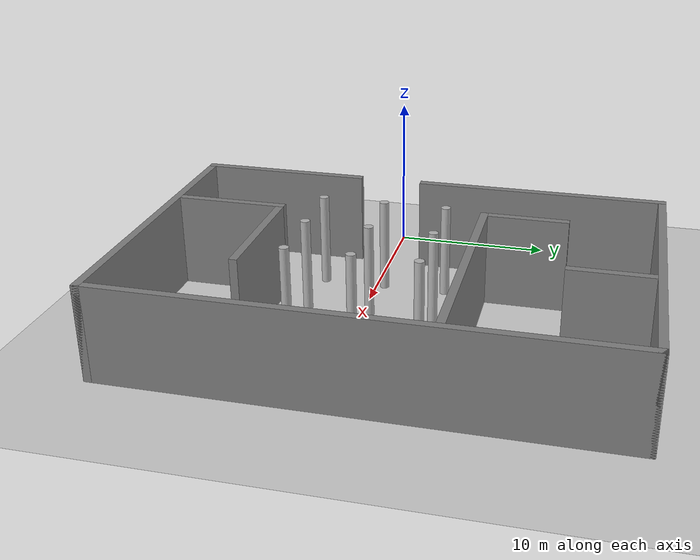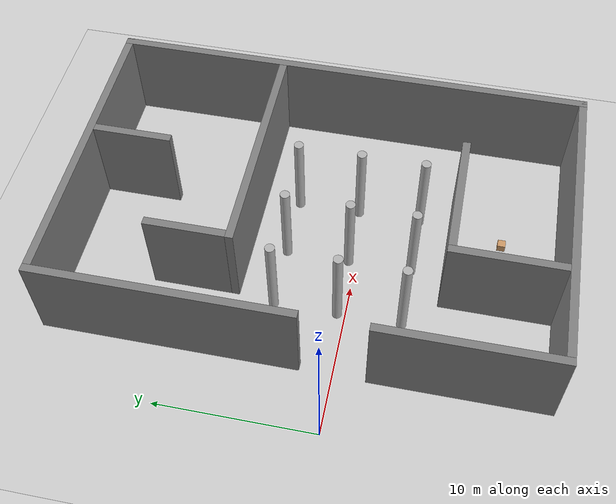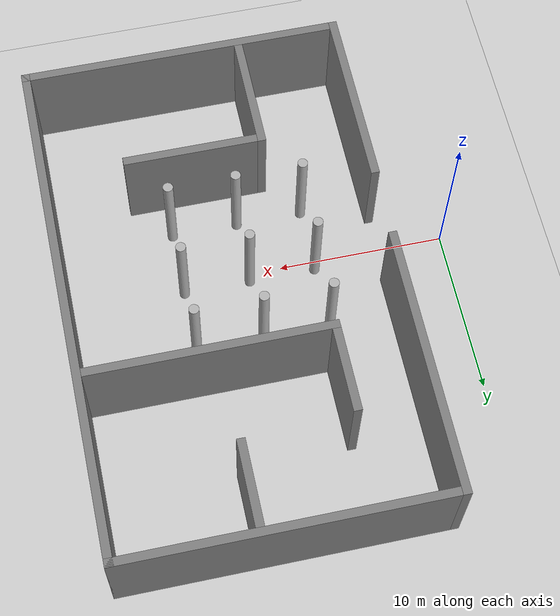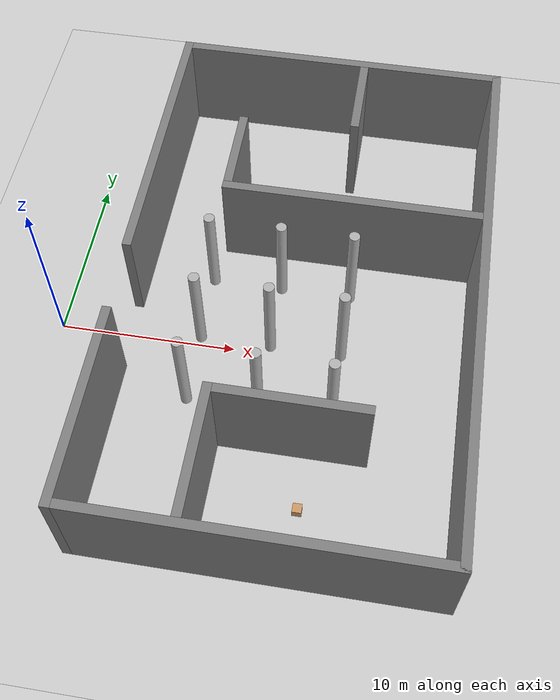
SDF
<?xml version="1.0" encoding="UTF-8"?>
<sdf version="1.9">
  <world name="default">
    <physics type="ode">
      <max_step_size>0.004</max_step_size>
      <real_time_factor>1.0</real_time_factor>
      <real_time_update_rate>250</real_time_update_rate>
    </physics>
    <gravity>0 0 -9.8</gravity>
    <magnetic_field>6e-06 2.3e-05 -4.2e-05</magnetic_field>
    <atmosphere type="adiabatic"/>
    <scene>
      <grid>false</grid>
      <ambient>0.4 0.4 0.4 1</ambient>
      <background>0.7 0.7 0.7 1</background>
      <shadows>true</shadows>
    </scene>

    <model name="ground_plane">
      <pose>0 0 0 0 0 0</pose>
      <static>true</static>
      <link name="link">
        <collision name="collision">
          <geometry>
            <plane>
              <normal>0 0 1</normal>
              <size>100 100</size>
            </plane>
          </geometry>
          <surface>
            <friction>
              <ode/>
            </friction>
            <bounce/>
            <contact/>
          </surface>
        </collision>
        <visual name="visual">
          <geometry>
            <plane>
              <normal>0 0 1</normal>
              <size>100 100</size>
            </plane>
          </geometry>
          <material>
            <ambient>0.8 0.8 0.8 1</ambient>
            <diffuse>0.8 0.8 0.8 1</diffuse>
            <specular>0.8 0.8 0.8 1</specular>
          </material>
        </visual>
        <enable_wind>false</enable_wind>
      </link>
      <self_collide>false</self_collide>
    </model>

    <model name="box_to_move">
    <pose>15 -9 0.25 0 0 0</pose>
    <static>true</static>
    <link name="link">
      <visual name="visual">
        <geometry>
          <box>
            <size>0.5 0.5 0.5</size>
          </box>
        </geometry>
        <material>
          <ambient>0.8 0.6 0.4 1</ambient>
          <diffuse>0.8 0.6 0.4 1</diffuse>
          <specular>0.2 0.15 0.1 1</specular>
          <emissive>0 0 0 1</emissive>
        </material>
      </visual>
    </link>
    <plugin name="Attach_plugin_namespace::Attach_plugin" filename="Attach_plugin"/>
    </model>

    <model name="wall_1">
    <pose>4 10 3 0 0 0</pose>
    <static>true</static>
    <link name="link">
      <collision name="collision">
        <geometry>
          <box>
            <size>0.5 16 6</size>
          </box>
        </geometry>
      </collision>
      <visual name="visual">
        <geometry>
          <box>
            <size>0.5 16 6</size>
          </box>
        </geometry>
        <material>
          <ambient>0.5 0.5 0.5 1</ambient>
          <diffuse>0.5 0.5 0.5 1</diffuse>
          <specular>0.1 0.1 0.1 1</specular>
          <emissive>0 0 0 1</emissive>
        </material>
      </visual>
    </link>
    </model>

    <model name="wall_2">
    <pose>4 -7.5 3 0 0 0</pose>
    <static>true</static>
    <link name="link">
      <collision name="collision">
        <geometry>
          <box>
            <size>0.5 11 6</size>
          </box>
        </geometry>
      </collision>
      <visual name="visual">
        <geometry>
          <box>
            <size>0.5 11 6</size>
          </box>
        </geometry>
        <material>
          <ambient>0.5 0.5 0.5 1</ambient>
          <diffuse>0.5 0.5 0.5 1</diffuse>
          <specular>0.1 0.1 0.1 1</specular>
          <emissive>0 0 0 1</emissive>
        </material>
      </visual>
    </link>
    </model>

    <model name="wall_4">
    <pose>13.75 -12.75 3 0 0 0</pose>
    <static>true</static>
    <link name="link">
      <collision name="collision">
        <geometry>
          <box>
            <size>19 0.5 6</size>
          </box>
        </geometry>
      </collision>
      <visual name="visual">
        <geometry>
          <box>
            <size>19 0.5 6</size>
          </box>
        </geometry>
        <material>
          <ambient>0.5 0.5 0.5 1</ambient>
          <diffuse>0.5 0.5 0.5 1</diffuse>
          <specular>0.1 0.1 0.1 1</specular>
          <emissive>0 0 0 1</emissive>
        </material>
      </visual>
    </link>
    </model>

    <model name="wall_5">
    <pose>13.75 17.75 3 0 0 0</pose>
    <static>true</static>
    <link name="link">
      <collision name="collision">
        <geometry>
          <box>
            <size>19 0.5 6</size>
          </box>
        </geometry>
      </collision>
      <visual name="visual">
        <geometry>
          <box>
            <size>19 0.5 6</size>
          </box>
        </geometry>
        <material>
          <ambient>0.5 0.5 0.5 1</ambient>
          <diffuse>0.5 0.5 0.5 1</diffuse>
          <specular>0.1 0.1 0.1 1</specular>
          <emissive>0 0 0 1</emissive>
        </material>
      </visual>
    </link>
    </model>

    <model name="wall_6">
    <pose>23 2.5 3 0 0 0</pose>
    <static>true</static>
    <link name="link">
      <collision name="collision">
        <geometry>
          <box>
            <size>0.5 31 6</size>
          </box>
        </geometry>
      </collision>
      <visual name="visual">
        <geometry>
          <box>
            <size>0.5 31 6</size>
          </box>
        </geometry>
        <material>
          <ambient>0.5 0.5 0.5 1</ambient>
          <diffuse>0.5 0.5 0.5 1</diffuse>
          <specular>0.1 0.1 0.1 1</specular>
          <emissive>0 0 0 1</emissive>
        </material>
      </visual>
    </link>
    </model>

    <model name="wall_7">
    <pose>10 -9 3 0 0 0</pose>
    <static>true</static>
    <link name="link">
      <collision name="collision">
        <geometry>
          <box>
            <size>0.5 7 6</size>
          </box>
        </geometry>
      </collision>
      <visual name="visual">
        <geometry>
          <box>
            <size>0.5 7 6</size>
          </box>
        </geometry>
        <material>
          <ambient>0.5 0.5 0.5 1</ambient>
          <diffuse>0.5 0.5 0.5 1</diffuse>
          <specular>0.1 0.1 0.1 1</specular>
          <emissive>0 0 0 1</emissive>
        </material>
      </visual>
    </link>
    </model>

    <model name="wall_8">
    <pose>14.25 -5.75 3 0 0 0</pose>
    <static>true</static>
    <link name="link">
      <collision name="collision">
        <geometry>
          <box>
            <size>8 0.5 6</size>
          </box>
        </geometry>
      </collision>
      <visual name="visual">
        <geometry>
          <box>
            <size>8 0.5 6</size>
          </box>
        </geometry>
        <material>
          <ambient>0.5 0.5 0.5 1</ambient>
          <diffuse>0.5 0.5 0.5 1</diffuse>
          <specular>0.1 0.1 0.1 1</specular>
          <emissive>0 0 0 1</emissive>
        </material>
      </visual>
    </link>
    </model>

    <model name="wall_11">
    <pose>15.5 7 3 0 0 0</pose>
    <static>true</static>
    <link name="link">
      <collision name="collision">
        <geometry>
          <box>
            <size>14.5 0.5 6</size>
          </box>
        </geometry>
      </collision>
      <visual name="visual">
        <geometry>
          <box>
            <size>14.5 0.5 6</size>
          </box>
        </geometry>
        <material>
          <ambient>0.5 0.5 0.5 1</ambient>
          <diffuse>0.5 0.5 0.5 1</diffuse>
          <specular>0.1 0.1 0.1 1</specular>
          <emissive>0 0 0 1</emissive>
        </material>
      </visual>
    </link>
    </model>

    <model name="wall_13">
    <pose>8.5 9.75 3 0 0 0</pose>
    <static>true</static>
    <link name="link">
      <collision name="collision">
        <geometry>
          <box>
            <size>0.5 5 6</size>
          </box>
        </geometry>
      </collision>
      <visual name="visual">
        <geometry>
          <box>
            <size>0.5 5 6</size>
          </box>
        </geometry>
        <material>
          <ambient>0.5 0.5 0.5 1</ambient>
          <diffuse>0.5 0.5 0.5 1</diffuse>
          <specular>0.1 0.1 0.1 1</specular>
          <emissive>0 0 0 1</emissive>
        </material>
      </visual>
    </link>
    </model>

    <model name="wall_14">
    <pose>15 15 3 0 0 0</pose>
    <static>true</static>
    <link name="link">
      <collision name="collision">
        <geometry>
          <box>
            <size>0.5 5 6</size>
          </box>
        </geometry>
      </collision>
      <visual name="visual">
        <geometry>
          <box>
            <size>0.5 5 6</size>
          </box>
        </geometry>
        <material>
          <ambient>0.5 0.5 0.5 1</ambient>
          <diffuse>0.5 0.5 0.5 1</diffuse>
          <specular>0.1 0.1 0.1 1</specular>
          <emissive>0 0 0 1</emissive>
        </material>
      </visual>
    </link>
    </model>

    <model name="column_1">
    <pose>8 4.5 3 0 0 0</pose>
    <static>true</static>
    <link name="link">
      <collision name="collision">
        <geometry>
          <cylinder>
            <radius>0.3</radius>
            <length>6</length>
          </cylinder>
        </geometry>
      </collision>
      <visual name="visual">
        <geometry>
          <cylinder>
            <radius>0.3</radius>
            <length>6</length>
          </cylinder>
        </geometry>
        <material>
          <ambient>0.6 0.6 0.6 1</ambient>
          <diffuse>0.7 0.7 0.7 1</diffuse>
          <specular>0.3 0.3 0.3 1</specular>
          <emissive>0 0 0 1</emissive>
        </material>
      </visual>
    </link>
    </model>

    <model name="column_2">
    <pose>8 0.5 3 0 0 0</pose>
    <static>true</static>
    <link name="link">
      <collision name="collision">
        <geometry>
          <cylinder>
            <radius>0.3</radius>
            <length>6</length>
          </cylinder>
        </geometry>
      </collision>
      <visual name="visual">
        <geometry>
          <cylinder>
            <radius>0.3</radius>
            <length>6</length>
          </cylinder>
        </geometry>
        <material>
          <ambient>0.6 0.6 0.6 1</ambient>
          <diffuse>0.7 0.7 0.7 1</diffuse>
          <specular>0.3 0.3 0.3 1</specular>
          <emissive>0 0 0 1</emissive>
        </material>
      </visual>
    </link>
    </model>

    <model name="column_3">
    <pose>8 -3.5 3 0 0 0</pose>
    <static>true</static>
    <link name="link">
      <collision name="collision">
        <geometry>
          <cylinder>
            <radius>0.3</radius>
            <length>6</length>
          </cylinder>
        </geometry>
      </collision>
      <visual name="visual">
        <geometry>
          <cylinder>
            <radius>0.3</radius>
            <length>6</length>
          </cylinder>
        </geometry>
        <material>
          <ambient>0.6 0.6 0.6 1</ambient>
          <diffuse>0.7 0.7 0.7 1</diffuse>
          <specular>0.3 0.3 0.3 1</specular>
          <emissive>0 0 0 1</emissive>
        </material>
      </visual>
    </link>
    </model>

    <model name="column_4">
    <pose>12 4.5 3 0 0 0</pose>
    <static>true</static>
    <link name="link">
      <collision name="collision">
        <geometry>
          <cylinder>
            <radius>0.3</radius>
            <length>6</length>
          </cylinder>
        </geometry>
      </collision>
      <visual name="visual">
        <geometry>
          <cylinder>
            <radius>0.3</radius>
            <length>6</length>
          </cylinder>
        </geometry>
        <material>
          <ambient>0.6 0.6 0.6 1</ambient>
          <diffuse>0.7 0.7 0.7 1</diffuse>
          <specular>0.3 0.3 0.3 1</specular>
          <emissive>0 0 0 1</emissive>
        </material>
      </visual>
    </link>
    </model>

    <model name="column_5">
    <pose>12 0.5 3 0 0 0</pose>
    <static>true</static>
    <link name="link">
      <collision name="collision">
        <geometry>
          <cylinder>
            <radius>0.3</radius>
            <length>6</length>
          </cylinder>
        </geometry>
      </collision>
      <visual name="visual">
        <geometry>
          <cylinder>
            <radius>0.3</radius>
            <length>6</length>
          </cylinder>
        </geometry>
        <material>
          <ambient>0.6 0.6 0.6 1</ambient>
          <diffuse>0.7 0.7 0.7 1</diffuse>
          <specular>0.3 0.3 0.3 1</specular>
          <emissive>0 0 0 1</emissive>
        </material>
      </visual>
    </link>
    </model>

    <model name="column_6">
    <pose>12 -3.5 3 0 0 0</pose>
    <static>true</static>
    <link name="link">
      <collision name="collision">
        <geometry>
          <cylinder>
            <radius>0.3</radius>
            <length>6</length>
          </cylinder>
        </geometry>
      </collision>
      <visual name="visual">
        <geometry>
          <cylinder>
            <radius>0.3</radius>
            <length>6</length>
          </cylinder>
        </geometry>
        <material>
          <ambient>0.6 0.6 0.6 1</ambient>
          <diffuse>0.7 0.7 0.7 1</diffuse>
          <specular>0.3 0.3 0.3 1</specular>
          <emissive>0 0 0 1</emissive>
        </material>
      </visual>
    </link>
    </model>

    <model name="column_7">
    <pose>16 4.5 3 0 0 0</pose>
    <static>true</static>
    <link name="link">
      <collision name="collision">
        <geometry>
          <cylinder>
            <radius>0.3</radius>
            <length>6</length>
          </cylinder>
        </geometry>
      </collision>
      <visual name="visual">
        <geometry>
          <cylinder>
            <radius>0.3</radius>
            <length>6</length>
          </cylinder>
        </geometry>
        <material>
          <ambient>0.6 0.6 0.6 1</ambient>
          <diffuse>0.7 0.7 0.7 1</diffuse>
          <specular>0.3 0.3 0.3 1</specular>
          <emissive>0 0 0 1</emissive>
        </material>
      </visual>
    </link>
    </model>

    <model name="column_8">
    <pose>16 0.5 3 0 0 0</pose>
    <static>true</static>
    <link name="link">
      <collision name="collision">
        <geometry>
          <cylinder>
            <radius>0.3</radius>
            <length>6</length>
          </cylinder>
        </geometry>
      </collision>
      <visual name="visual">
        <geometry>
          <cylinder>
            <radius>0.3</radius>
            <length>6</length>
          </cylinder>
        </geometry>
        <material>
          <ambient>0.6 0.6 0.6 1</ambient>
          <diffuse>0.7 0.7 0.7 1</diffuse>
          <specular>0.3 0.3 0.3 1</specular>
          <emissive>0 0 0 1</emissive>
        </material>
      </visual>
    </link>
    </model>

    <model name="column_9">
    <pose>16 -3.5 3 0 0 0</pose>
    <static>true</static>
    <link name="link">
      <collision name="collision">
        <geometry>
          <cylinder>
            <radius>0.3</radius>
            <length>6</length>
          </cylinder>
        </geometry>
      </collision>
      <visual name="visual">
        <geometry>
          <cylinder>
            <radius>0.3</radius>
            <length>6</length>
          </cylinder>
        </geometry>
        <material>
          <ambient>0.6 0.6 0.6 1</ambient>
          <diffuse>0.7 0.7 0.7 1</diffuse>
          <specular>0.3 0.3 0.3 1</specular>
          <emissive>0 0 0 1</emissive>
        </material>
      </visual>
    </link>
    </model>

    <light name="sunUTC" type="directional">
      <pose>0 0 500 0 -0 0</pose>
      <cast_shadows>false</cast_shadows>
      <intensity>1</intensity>
      <direction>0.001 0.625 -0.78</direction>
      <diffuse>0.904 0.904 0.904 1</diffuse>
      <specular>0.271 0.271 0.271 1</specular>
      <attenuation>
        <range>2000</range>
        <linear>0</linear>
        <constant>1</constant>
        <quadratic>0</quadratic>
      </attenuation>
      <spot>
        <inner_angle>0</inner_angle>
        <outer_angle>0</outer_angle>
        <falloff>0</falloff>
      </spot>
    </light>
    <spherical_coordinates>
      <surface_model>EARTH_WGS84</surface_model>
      <world_frame_orientation>ENU</world_frame_orientation>
      <latitude_deg>47.397971057728974</latitude_deg>
      <longitude_deg> 8.546163739800146</longitude_deg>
      <elevation>0</elevation>
    </spherical_coordinates>
  </world>
</sdf>
